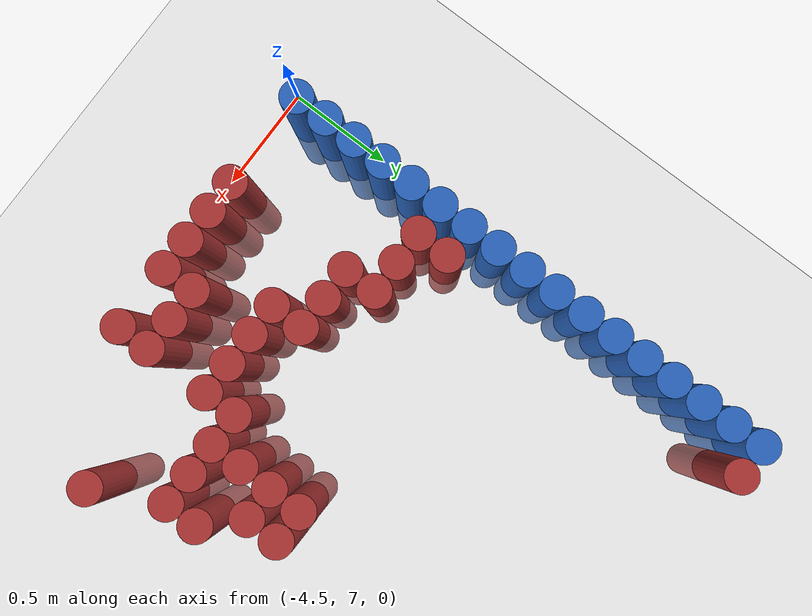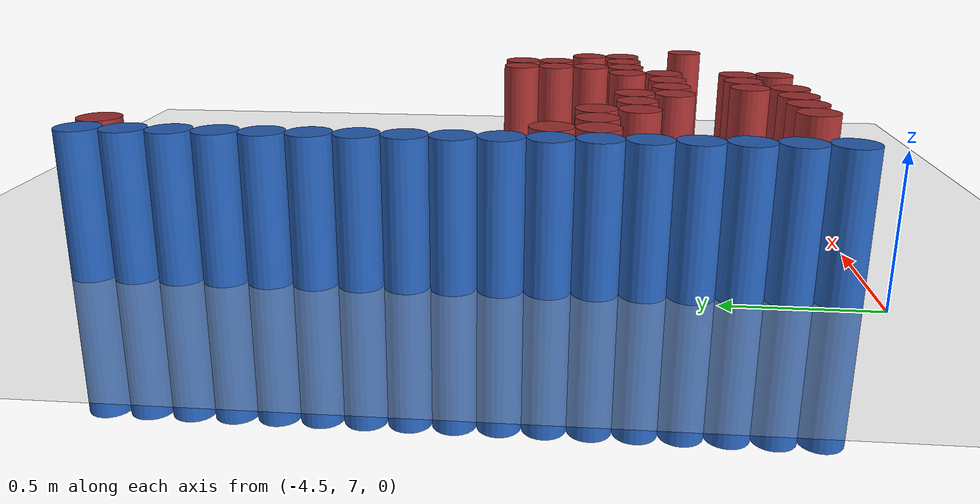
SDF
<sdf version="1.6">
 <world name="default">
  <model name="ground_plane">
   <static>1</static>
   <link name="link">
    <collision name="collision">
     <geometry><plane><normal>0 0 1</normal><size>100 100</size></plane></geometry>
     <surface><friction><ode><mu>100</mu><mu2>50</mu2></ode></friction></surface>
    </collision>
    <visual name="visual">
     <cast_shadows>0</cast_shadows>
     <geometry><plane><normal>0 0 1</normal><size>100 100</size></plane></geometry>
     <material>
      <script><uri>file://media/materials/scripts/gazebo.material</uri><name>Gazebo/Grey</name></script>
     </material>
    </visual>
   </link>
  </model>
  <model name="unit_cylinder_109">
   <static>1</static>
   <pose>-4.425000 7.125000 0.000000 0.000000 0.000000 0.000000</pose>
   <link name="link">
    <inertial>
     <mass>1</mass>
     <inertia><ixx>0.145833</ixx><ixy>0</ixy><ixz>0</ixz><iyy>0.145833</iyy><iyz>0</iyz><izz>0.125</izz></inertia>
    </inertial>
    <collision name="collision">
     <geometry><cylinder><radius>0.075000</radius><length>1</length></cylinder></geometry>
    </collision>
    <visual name="visual">
     <geometry><cylinder><radius>0.075000</radius><length>1</length></cylinder></geometry>
     <material>
      <ambient>0.152000 0.379000 0.720000 1</ambient>
      <diffuse>0.152000 0.379000 0.720000 1</diffuse>
     </material>
     <material>
      <script><name>Gazebo/Grey</name><uri>file://media/materials/scripts/gazebo.material</uri></script>
     </material>
    </visual>
   </link>
  </model>
  <model name="unit_cylinder_110">
   <static>1</static>
   <pose>-4.425000 7.275000 0.000000 0.000000 0.000000 0.000000</pose>
   <link name="link">
    <inertial>
     <mass>1</mass>
     <inertia><ixx>0.145833</ixx><ixy>0</ixy><ixz>0</ixz><iyy>0.145833</iyy><iyz>0</iyz><izz>0.125</izz></inertia>
    </inertial>
    <collision name="collision">
     <geometry><cylinder><radius>0.075000</radius><length>1</length></cylinder></geometry>
    </collision>
    <visual name="visual">
     <geometry><cylinder><radius>0.075000</radius><length>1</length></cylinder></geometry>
     <material>
      <ambient>0.152000 0.379000 0.720000 1</ambient>
      <diffuse>0.152000 0.379000 0.720000 1</diffuse>
     </material>
     <material>
      <script><name>Gazebo/Grey</name><uri>file://media/materials/scripts/gazebo.material</uri></script>
     </material>
    </visual>
   </link>
  </model>
  <model name="unit_cylinder_111">
   <static>1</static>
   <pose>-4.425000 7.425000 0.000000 0.000000 0.000000 0.000000</pose>
   <link name="link">
    <inertial>
     <mass>1</mass>
     <inertia><ixx>0.145833</ixx><ixy>0</ixy><ixz>0</ixz><iyy>0.145833</iyy><iyz>0</iyz><izz>0.125</izz></inertia>
    </inertial>
    <collision name="collision">
     <geometry><cylinder><radius>0.075000</radius><length>1</length></cylinder></geometry>
    </collision>
    <visual name="visual">
     <geometry><cylinder><radius>0.075000</radius><length>1</length></cylinder></geometry>
     <material>
      <ambient>0.152000 0.379000 0.720000 1</ambient>
      <diffuse>0.152000 0.379000 0.720000 1</diffuse>
     </material>
     <material>
      <script><name>Gazebo/Grey</name><uri>file://media/materials/scripts/gazebo.material</uri></script>
     </material>
    </visual>
   </link>
  </model>
  <model name="unit_cylinder_112">
   <static>1</static>
   <pose>-4.425000 7.575000 0.000000 0.000000 0.000000 0.000000</pose>
   <link name="link">
    <inertial>
     <mass>1</mass>
     <inertia><ixx>0.145833</ixx><ixy>0</ixy><ixz>0</ixz><iyy>0.145833</iyy><iyz>0</iyz><izz>0.125</izz></inertia>
    </inertial>
    <collision name="collision">
     <geometry><cylinder><radius>0.075000</radius><length>1</length></cylinder></geometry>
    </collision>
    <visual name="visual">
     <geometry><cylinder><radius>0.075000</radius><length>1</length></cylinder></geometry>
     <material>
      <ambient>0.152000 0.379000 0.720000 1</ambient>
      <diffuse>0.152000 0.379000 0.720000 1</diffuse>
     </material>
     <material>
      <script><name>Gazebo/Grey</name><uri>file://media/materials/scripts/gazebo.material</uri></script>
     </material>
    </visual>
   </link>
  </model>
  <model name="unit_cylinder_113">
   <static>1</static>
   <pose>-4.425000 7.725000 0.000000 0.000000 0.000000 0.000000</pose>
   <link name="link">
    <inertial>
     <mass>1</mass>
     <inertia><ixx>0.145833</ixx><ixy>0</ixy><ixz>0</ixz><iyy>0.145833</iyy><iyz>0</iyz><izz>0.125</izz></inertia>
    </inertial>
    <collision name="collision">
     <geometry><cylinder><radius>0.075000</radius><length>1</length></cylinder></geometry>
    </collision>
    <visual name="visual">
     <geometry><cylinder><radius>0.075000</radius><length>1</length></cylinder></geometry>
     <material>
      <ambient>0.152000 0.379000 0.720000 1</ambient>
      <diffuse>0.152000 0.379000 0.720000 1</diffuse>
     </material>
     <material>
      <script><name>Gazebo/Grey</name><uri>file://media/materials/scripts/gazebo.material</uri></script>
     </material>
    </visual>
   </link>
  </model>
  <model name="unit_cylinder_114">
   <static>1</static>
   <pose>-4.425000 7.875000 0.000000 0.000000 0.000000 0.000000</pose>
   <link name="link">
    <inertial>
     <mass>1</mass>
     <inertia><ixx>0.145833</ixx><ixy>0</ixy><ixz>0</ixz><iyy>0.145833</iyy><iyz>0</iyz><izz>0.125</izz></inertia>
    </inertial>
    <collision name="collision">
     <geometry><cylinder><radius>0.075000</radius><length>1</length></cylinder></geometry>
    </collision>
    <visual name="visual">
     <geometry><cylinder><radius>0.075000</radius><length>1</length></cylinder></geometry>
     <material>
      <ambient>0.152000 0.379000 0.720000 1</ambient>
      <diffuse>0.152000 0.379000 0.720000 1</diffuse>
     </material>
     <material>
      <script><name>Gazebo/Grey</name><uri>file://media/materials/scripts/gazebo.material</uri></script>
     </material>
    </visual>
   </link>
  </model>
  <model name="unit_cylinder_115">
   <static>1</static>
   <pose>-4.425000 8.025000 0.000000 0.000000 0.000000 0.000000</pose>
   <link name="link">
    <inertial>
     <mass>1</mass>
     <inertia><ixx>0.145833</ixx><ixy>0</ixy><ixz>0</ixz><iyy>0.145833</iyy><iyz>0</iyz><izz>0.125</izz></inertia>
    </inertial>
    <collision name="collision">
     <geometry><cylinder><radius>0.075000</radius><length>1</length></cylinder></geometry>
    </collision>
    <visual name="visual">
     <geometry><cylinder><radius>0.075000</radius><length>1</length></cylinder></geometry>
     <material>
      <ambient>0.152000 0.379000 0.720000 1</ambient>
      <diffuse>0.152000 0.379000 0.720000 1</diffuse>
     </material>
     <material>
      <script><name>Gazebo/Grey</name><uri>file://media/materials/scripts/gazebo.material</uri></script>
     </material>
    </visual>
   </link>
  </model>
  <model name="unit_cylinder_116">
   <static>1</static>
   <pose>-4.425000 8.175000 0.000000 0.000000 0.000000 0.000000</pose>
   <link name="link">
    <inertial>
     <mass>1</mass>
     <inertia><ixx>0.145833</ixx><ixy>0</ixy><ixz>0</ixz><iyy>0.145833</iyy><iyz>0</iyz><izz>0.125</izz></inertia>
    </inertial>
    <collision name="collision">
     <geometry><cylinder><radius>0.075000</radius><length>1</length></cylinder></geometry>
    </collision>
    <visual name="visual">
     <geometry><cylinder><radius>0.075000</radius><length>1</length></cylinder></geometry>
     <material>
      <ambient>0.152000 0.379000 0.720000 1</ambient>
      <diffuse>0.152000 0.379000 0.720000 1</diffuse>
     </material>
     <material>
      <script><name>Gazebo/Grey</name><uri>file://media/materials/scripts/gazebo.material</uri></script>
     </material>
    </visual>
   </link>
  </model>
  <model name="unit_cylinder_117">
   <static>1</static>
   <pose>-4.425000 8.325000 0.000000 0.000000 0.000000 0.000000</pose>
   <link name="link">
    <inertial>
     <mass>1</mass>
     <inertia><ixx>0.145833</ixx><ixy>0</ixy><ixz>0</ixz><iyy>0.145833</iyy><iyz>0</iyz><izz>0.125</izz></inertia>
    </inertial>
    <collision name="collision">
     <geometry><cylinder><radius>0.075000</radius><length>1</length></cylinder></geometry>
    </collision>
    <visual name="visual">
     <geometry><cylinder><radius>0.075000</radius><length>1</length></cylinder></geometry>
     <material>
      <ambient>0.152000 0.379000 0.720000 1</ambient>
      <diffuse>0.152000 0.379000 0.720000 1</diffuse>
     </material>
     <material>
      <script><name>Gazebo/Grey</name><uri>file://media/materials/scripts/gazebo.material</uri></script>
     </material>
    </visual>
   </link>
  </model>
  <model name="unit_cylinder_118">
   <static>1</static>
   <pose>-4.425000 8.475000 0.000000 0.000000 0.000000 0.000000</pose>
   <link name="link">
    <inertial>
     <mass>1</mass>
     <inertia><ixx>0.145833</ixx><ixy>0</ixy><ixz>0</ixz><iyy>0.145833</iyy><iyz>0</iyz><izz>0.125</izz></inertia>
    </inertial>
    <collision name="collision">
     <geometry><cylinder><radius>0.075000</radius><length>1</length></cylinder></geometry>
    </collision>
    <visual name="visual">
     <geometry><cylinder><radius>0.075000</radius><length>1</length></cylinder></geometry>
     <material>
      <ambient>0.152000 0.379000 0.720000 1</ambient>
      <diffuse>0.152000 0.379000 0.720000 1</diffuse>
     </material>
     <material>
      <script><name>Gazebo/Grey</name><uri>file://media/materials/scripts/gazebo.material</uri></script>
     </material>
    </visual>
   </link>
  </model>
  <model name="unit_cylinder_119">
   <static>1</static>
   <pose>-4.425000 8.625000 0.000000 0.000000 0.000000 0.000000</pose>
   <link name="link">
    <inertial>
     <mass>1</mass>
     <inertia><ixx>0.145833</ixx><ixy>0</ixy><ixz>0</ixz><iyy>0.145833</iyy><iyz>0</iyz><izz>0.125</izz></inertia>
    </inertial>
    <collision name="collision">
     <geometry><cylinder><radius>0.075000</radius><length>1</length></cylinder></geometry>
    </collision>
    <visual name="visual">
     <geometry><cylinder><radius>0.075000</radius><length>1</length></cylinder></geometry>
     <material>
      <ambient>0.152000 0.379000 0.720000 1</ambient>
      <diffuse>0.152000 0.379000 0.720000 1</diffuse>
     </material>
     <material>
      <script><name>Gazebo/Grey</name><uri>file://media/materials/scripts/gazebo.material</uri></script>
     </material>
    </visual>
   </link>
  </model>
  <model name="unit_cylinder_120">
   <static>1</static>
   <pose>-4.425000 8.775000 0.000000 0.000000 0.000000 0.000000</pose>
   <link name="link">
    <inertial>
     <mass>1</mass>
     <inertia><ixx>0.145833</ixx><ixy>0</ixy><ixz>0</ixz><iyy>0.145833</iyy><iyz>0</iyz><izz>0.125</izz></inertia>
    </inertial>
    <collision name="collision">
     <geometry><cylinder><radius>0.075000</radius><length>1</length></cylinder></geometry>
    </collision>
    <visual name="visual">
     <geometry><cylinder><radius>0.075000</radius><length>1</length></cylinder></geometry>
     <material>
      <ambient>0.152000 0.379000 0.720000 1</ambient>
      <diffuse>0.152000 0.379000 0.720000 1</diffuse>
     </material>
     <material>
      <script><name>Gazebo/Grey</name><uri>file://media/materials/scripts/gazebo.material</uri></script>
     </material>
    </visual>
   </link>
  </model>
  <model name="unit_cylinder_121">
   <static>1</static>
   <pose>-4.425000 8.925000 0.000000 0.000000 0.000000 0.000000</pose>
   <link name="link">
    <inertial>
     <mass>1</mass>
     <inertia><ixx>0.145833</ixx><ixy>0</ixy><ixz>0</ixz><iyy>0.145833</iyy><iyz>0</iyz><izz>0.125</izz></inertia>
    </inertial>
    <collision name="collision">
     <geometry><cylinder><radius>0.075000</radius><length>1</length></cylinder></geometry>
    </collision>
    <visual name="visual">
     <geometry><cylinder><radius>0.075000</radius><length>1</length></cylinder></geometry>
     <material>
      <ambient>0.152000 0.379000 0.720000 1</ambient>
      <diffuse>0.152000 0.379000 0.720000 1</diffuse>
     </material>
     <material>
      <script><name>Gazebo/Grey</name><uri>file://media/materials/scripts/gazebo.material</uri></script>
     </material>
    </visual>
   </link>
  </model>
  <model name="unit_cylinder_122">
   <static>1</static>
   <pose>-4.425000 9.075000 0.000000 0.000000 0.000000 0.000000</pose>
   <link name="link">
    <inertial>
     <mass>1</mass>
     <inertia><ixx>0.145833</ixx><ixy>0</ixy><ixz>0</ixz><iyy>0.145833</iyy><iyz>0</iyz><izz>0.125</izz></inertia>
    </inertial>
    <collision name="collision">
     <geometry><cylinder><radius>0.075000</radius><length>1</length></cylinder></geometry>
    </collision>
    <visual name="visual">
     <geometry><cylinder><radius>0.075000</radius><length>1</length></cylinder></geometry>
     <material>
      <ambient>0.152000 0.379000 0.720000 1</ambient>
      <diffuse>0.152000 0.379000 0.720000 1</diffuse>
     </material>
     <material>
      <script><name>Gazebo/Grey</name><uri>file://media/materials/scripts/gazebo.material</uri></script>
     </material>
    </visual>
   </link>
  </model>
  <model name="unit_cylinder_123">
   <static>1</static>
   <pose>-4.425000 9.225000 0.000000 0.000000 0.000000 0.000000</pose>
   <link name="link">
    <inertial>
     <mass>1</mass>
     <inertia><ixx>0.145833</ixx><ixy>0</ixy><ixz>0</ixz><iyy>0.145833</iyy><iyz>0</iyz><izz>0.125</izz></inertia>
    </inertial>
    <collision name="collision">
     <geometry><cylinder><radius>0.075000</radius><length>1</length></cylinder></geometry>
    </collision>
    <visual name="visual">
     <geometry><cylinder><radius>0.075000</radius><length>1</length></cylinder></geometry>
     <material>
      <ambient>0.152000 0.379000 0.720000 1</ambient>
      <diffuse>0.152000 0.379000 0.720000 1</diffuse>
     </material>
     <material>
      <script><name>Gazebo/Grey</name><uri>file://media/materials/scripts/gazebo.material</uri></script>
     </material>
    </visual>
   </link>
  </model>
  <model name="unit_cylinder_124">
   <static>1</static>
   <pose>-4.425000 9.375000 0.000000 0.000000 0.000000 0.000000</pose>
   <link name="link">
    <inertial>
     <mass>1</mass>
     <inertia><ixx>0.145833</ixx><ixy>0</ixy><ixz>0</ixz><iyy>0.145833</iyy><iyz>0</iyz><izz>0.125</izz></inertia>
    </inertial>
    <collision name="collision">
     <geometry><cylinder><radius>0.075000</radius><length>1</length></cylinder></geometry>
    </collision>
    <visual name="visual">
     <geometry><cylinder><radius>0.075000</radius><length>1</length></cylinder></geometry>
     <material>
      <ambient>0.152000 0.379000 0.720000 1</ambient>
      <diffuse>0.152000 0.379000 0.720000 1</diffuse>
     </material>
     <material>
      <script><name>Gazebo/Grey</name><uri>file://media/materials/scripts/gazebo.material</uri></script>
     </material>
    </visual>
   </link>
  </model>
  <model name="unit_cylinder_125">
   <static>1</static>
   <pose>-4.425000 9.525000 0.000000 0.000000 0.000000 0.000000</pose>
   <link name="link">
    <inertial>
     <mass>1</mass>
     <inertia><ixx>0.145833</ixx><ixy>0</ixy><ixz>0</ixz><iyy>0.145833</iyy><iyz>0</iyz><izz>0.125</izz></inertia>
    </inertial>
    <collision name="collision">
     <geometry><cylinder><radius>0.075000</radius><length>1</length></cylinder></geometry>
    </collision>
    <visual name="visual">
     <geometry><cylinder><radius>0.075000</radius><length>1</length></cylinder></geometry>
     <material>
      <ambient>0.152000 0.379000 0.720000 1</ambient>
      <diffuse>0.152000 0.379000 0.720000 1</diffuse>
     </material>
     <material>
      <script><name>Gazebo/Grey</name><uri>file://media/materials/scripts/gazebo.material</uri></script>
     </material>
    </visual>
   </link>
  </model>
  <model name="unit_cylinder_129">
   <static>1</static>
   <pose>-4.275000 7.875000 0.000000 0.000000 0.000000 0.000000</pose>
   <link name="link">
    <inertial>
     <mass>1</mass>
     <inertia><ixx>0.145833</ixx><ixy>0</ixy><ixz>0</ixz><iyy>0.145833</iyy><iyz>0</iyz><izz>0.125</izz></inertia>
    </inertial>
    <collision name="collision">
     <geometry><cylinder><radius>0.075000</radius><length>1</length></cylinder></geometry>
    </collision>
    <visual name="visual">
     <geometry><cylinder><radius>0.075000</radius><length>1</length></cylinder></geometry>
     <material>
      <ambient>0.648000 0.192000 0.192000 1</ambient>
      <diffuse>0.648000 0.192000 0.192000 1</diffuse>
     </material>
     <material>
      <script><name>Gazebo/Grey</name><uri>file://media/materials/scripts/gazebo.material</uri></script>
     </material>
    </visual>
   </link>
  </model>
  <model name="unit_cylinder_130">
   <static>1</static>
   <pose>-4.275000 8.025000 0.000000 0.000000 0.000000 0.000000</pose>
   <link name="link">
    <inertial>
     <mass>1</mass>
     <inertia><ixx>0.145833</ixx><ixy>0</ixy><ixz>0</ixz><iyy>0.145833</iyy><iyz>0</iyz><izz>0.125</izz></inertia>
    </inertial>
    <collision name="collision">
     <geometry><cylinder><radius>0.075000</radius><length>1</length></cylinder></geometry>
    </collision>
    <visual name="visual">
     <geometry><cylinder><radius>0.075000</radius><length>1</length></cylinder></geometry>
     <material>
      <ambient>0.648000 0.192000 0.192000 1</ambient>
      <diffuse>0.648000 0.192000 0.192000 1</diffuse>
     </material>
     <material>
      <script><name>Gazebo/Grey</name><uri>file://media/materials/scripts/gazebo.material</uri></script>
     </material>
    </visual>
   </link>
  </model>
  <model name="unit_cylinder_131">
   <static>1</static>
   <pose>-4.275000 9.525000 0.000000 0.000000 0.000000 0.000000</pose>
   <link name="link">
    <inertial>
     <mass>1</mass>
     <inertia><ixx>0.145833</ixx><ixy>0</ixy><ixz>0</ixz><iyy>0.145833</iyy><iyz>0</iyz><izz>0.125</izz></inertia>
    </inertial>
    <collision name="collision">
     <geometry><cylinder><radius>0.075000</radius><length>1</length></cylinder></geometry>
    </collision>
    <visual name="visual">
     <geometry><cylinder><radius>0.075000</radius><length>1</length></cylinder></geometry>
     <material>
      <ambient>0.648000 0.192000 0.192000 1</ambient>
      <diffuse>0.648000 0.192000 0.192000 1</diffuse>
     </material>
     <material>
      <script><name>Gazebo/Grey</name><uri>file://media/materials/scripts/gazebo.material</uri></script>
     </material>
    </visual>
   </link>
  </model>
  <model name="unit_cylinder_138">
   <static>1</static>
   <pose>-4.125000 7.875000 0.000000 0.000000 0.000000 0.000000</pose>
   <link name="link">
    <inertial>
     <mass>1</mass>
     <inertia><ixx>0.145833</ixx><ixy>0</ixy><ixz>0</ixz><iyy>0.145833</iyy><iyz>0</iyz><izz>0.125</izz></inertia>
    </inertial>
    <collision name="collision">
     <geometry><cylinder><radius>0.075000</radius><length>1</length></cylinder></geometry>
    </collision>
    <visual name="visual">
     <geometry><cylinder><radius>0.075000</radius><length>1</length></cylinder></geometry>
     <material>
      <ambient>0.648000 0.192000 0.192000 1</ambient>
      <diffuse>0.648000 0.192000 0.192000 1</diffuse>
     </material>
     <material>
      <script><name>Gazebo/Grey</name><uri>file://media/materials/scripts/gazebo.material</uri></script>
     </material>
    </visual>
   </link>
  </model>
  <model name="unit_cylinder_143">
   <static>1</static>
   <pose>-3.975000 7.125000 0.000000 0.000000 0.000000 0.000000</pose>
   <link name="link">
    <inertial>
     <mass>1</mass>
     <inertia><ixx>0.145833</ixx><ixy>0</ixy><ixz>0</ixz><iyy>0.145833</iyy><iyz>0</iyz><izz>0.125</izz></inertia>
    </inertial>
    <collision name="collision">
     <geometry><cylinder><radius>0.075000</radius><length>1</length></cylinder></geometry>
    </collision>
    <visual name="visual">
     <geometry><cylinder><radius>0.075000</radius><length>1</length></cylinder></geometry>
     <material>
      <ambient>0.648000 0.192000 0.192000 1</ambient>
      <diffuse>0.648000 0.192000 0.192000 1</diffuse>
     </material>
     <material>
      <script><name>Gazebo/Grey</name><uri>file://media/materials/scripts/gazebo.material</uri></script>
     </material>
    </visual>
   </link>
  </model>
  <model name="unit_cylinder_144">
   <static>1</static>
   <pose>-3.975000 7.725000 0.000000 0.000000 0.000000 0.000000</pose>
   <link name="link">
    <inertial>
     <mass>1</mass>
     <inertia><ixx>0.145833</ixx><ixy>0</ixy><ixz>0</ixz><iyy>0.145833</iyy><iyz>0</iyz><izz>0.125</izz></inertia>
    </inertial>
    <collision name="collision">
     <geometry><cylinder><radius>0.075000</radius><length>1</length></cylinder></geometry>
    </collision>
    <visual name="visual">
     <geometry><cylinder><radius>0.075000</radius><length>1</length></cylinder></geometry>
     <material>
      <ambient>0.648000 0.192000 0.192000 1</ambient>
      <diffuse>0.648000 0.192000 0.192000 1</diffuse>
     </material>
     <material>
      <script><name>Gazebo/Grey</name><uri>file://media/materials/scripts/gazebo.material</uri></script>
     </material>
    </visual>
   </link>
  </model>
  <model name="unit_cylinder_145">
   <static>1</static>
   <pose>-3.975000 7.875000 0.000000 0.000000 0.000000 0.000000</pose>
   <link name="link">
    <inertial>
     <mass>1</mass>
     <inertia><ixx>0.145833</ixx><ixy>0</ixy><ixz>0</ixz><iyy>0.145833</iyy><iyz>0</iyz><izz>0.125</izz></inertia>
    </inertial>
    <collision name="collision">
     <geometry><cylinder><radius>0.075000</radius><length>1</length></cylinder></geometry>
    </collision>
    <visual name="visual">
     <geometry><cylinder><radius>0.075000</radius><length>1</length></cylinder></geometry>
     <material>
      <ambient>0.648000 0.192000 0.192000 1</ambient>
      <diffuse>0.648000 0.192000 0.192000 1</diffuse>
     </material>
     <material>
      <script><name>Gazebo/Grey</name><uri>file://media/materials/scripts/gazebo.material</uri></script>
     </material>
    </visual>
   </link>
  </model>
  <model name="unit_cylinder_149">
   <static>1</static>
   <pose>-3.825000 7.125000 0.000000 0.000000 0.000000 0.000000</pose>
   <link name="link">
    <inertial>
     <mass>1</mass>
     <inertia><ixx>0.145833</ixx><ixy>0</ixy><ixz>0</ixz><iyy>0.145833</iyy><iyz>0</iyz><izz>0.125</izz></inertia>
    </inertial>
    <collision name="collision">
     <geometry><cylinder><radius>0.075000</radius><length>1</length></cylinder></geometry>
    </collision>
    <visual name="visual">
     <geometry><cylinder><radius>0.075000</radius><length>1</length></cylinder></geometry>
     <material>
      <ambient>0.648000 0.192000 0.192000 1</ambient>
      <diffuse>0.648000 0.192000 0.192000 1</diffuse>
     </material>
     <material>
      <script><name>Gazebo/Grey</name><uri>file://media/materials/scripts/gazebo.material</uri></script>
     </material>
    </visual>
   </link>
  </model>
  <model name="unit_cylinder_150">
   <static>1</static>
   <pose>-3.825000 7.725000 0.000000 0.000000 0.000000 0.000000</pose>
   <link name="link">
    <inertial>
     <mass>1</mass>
     <inertia><ixx>0.145833</ixx><ixy>0</ixy><ixz>0</ixz><iyy>0.145833</iyy><iyz>0</iyz><izz>0.125</izz></inertia>
    </inertial>
    <collision name="collision">
     <geometry><cylinder><radius>0.075000</radius><length>1</length></cylinder></geometry>
    </collision>
    <visual name="visual">
     <geometry><cylinder><radius>0.075000</radius><length>1</length></cylinder></geometry>
     <material>
      <ambient>0.648000 0.192000 0.192000 1</ambient>
      <diffuse>0.648000 0.192000 0.192000 1</diffuse>
     </material>
     <material>
      <script><name>Gazebo/Grey</name><uri>file://media/materials/scripts/gazebo.material</uri></script>
     </material>
    </visual>
   </link>
  </model>
  <model name="unit_cylinder_156">
   <static>1</static>
   <pose>-3.675000 7.125000 0.000000 0.000000 0.000000 0.000000</pose>
   <link name="link">
    <inertial>
     <mass>1</mass>
     <inertia><ixx>0.145833</ixx><ixy>0</ixy><ixz>0</ixz><iyy>0.145833</iyy><iyz>0</iyz><izz>0.125</izz></inertia>
    </inertial>
    <collision name="collision">
     <geometry><cylinder><radius>0.075000</radius><length>1</length></cylinder></geometry>
    </collision>
    <visual name="visual">
     <geometry><cylinder><radius>0.075000</radius><length>1</length></cylinder></geometry>
     <material>
      <ambient>0.648000 0.192000 0.192000 1</ambient>
      <diffuse>0.648000 0.192000 0.192000 1</diffuse>
     </material>
     <material>
      <script><name>Gazebo/Grey</name><uri>file://media/materials/scripts/gazebo.material</uri></script>
     </material>
    </visual>
   </link>
  </model>
  <model name="unit_cylinder_157">
   <static>1</static>
   <pose>-3.675000 7.575000 0.000000 0.000000 0.000000 0.000000</pose>
   <link name="link">
    <inertial>
     <mass>1</mass>
     <inertia><ixx>0.145833</ixx><ixy>0</ixy><ixz>0</ixz><iyy>0.145833</iyy><iyz>0</iyz><izz>0.125</izz></inertia>
    </inertial>
    <collision name="collision">
     <geometry><cylinder><radius>0.075000</radius><length>1</length></cylinder></geometry>
    </collision>
    <visual name="visual">
     <geometry><cylinder><radius>0.075000</radius><length>1</length></cylinder></geometry>
     <material>
      <ambient>0.648000 0.192000 0.192000 1</ambient>
      <diffuse>0.648000 0.192000 0.192000 1</diffuse>
     </material>
     <material>
      <script><name>Gazebo/Grey</name><uri>file://media/materials/scripts/gazebo.material</uri></script>
     </material>
    </visual>
   </link>
  </model>
  <model name="unit_cylinder_158">
   <static>1</static>
   <pose>-3.675000 7.725000 0.000000 0.000000 0.000000 0.000000</pose>
   <link name="link">
    <inertial>
     <mass>1</mass>
     <inertia><ixx>0.145833</ixx><ixy>0</ixy><ixz>0</ixz><iyy>0.145833</iyy><iyz>0</iyz><izz>0.125</izz></inertia>
    </inertial>
    <collision name="collision">
     <geometry><cylinder><radius>0.075000</radius><length>1</length></cylinder></geometry>
    </collision>
    <visual name="visual">
     <geometry><cylinder><radius>0.075000</radius><length>1</length></cylinder></geometry>
     <material>
      <ambient>0.648000 0.192000 0.192000 1</ambient>
      <diffuse>0.648000 0.192000 0.192000 1</diffuse>
     </material>
     <material>
      <script><name>Gazebo/Grey</name><uri>file://media/materials/scripts/gazebo.material</uri></script>
     </material>
    </visual>
   </link>
  </model>
  <model name="unit_cylinder_162">
   <static>1</static>
   <pose>-3.525000 7.125000 0.000000 0.000000 0.000000 0.000000</pose>
   <link name="link">
    <inertial>
     <mass>1</mass>
     <inertia><ixx>0.145833</ixx><ixy>0</ixy><ixz>0</ixz><iyy>0.145833</iyy><iyz>0</iyz><izz>0.125</izz></inertia>
    </inertial>
    <collision name="collision">
     <geometry><cylinder><radius>0.075000</radius><length>1</length></cylinder></geometry>
    </collision>
    <visual name="visual">
     <geometry><cylinder><radius>0.075000</radius><length>1</length></cylinder></geometry>
     <material>
      <ambient>0.648000 0.192000 0.192000 1</ambient>
      <diffuse>0.648000 0.192000 0.192000 1</diffuse>
     </material>
     <material>
      <script><name>Gazebo/Grey</name><uri>file://media/materials/scripts/gazebo.material</uri></script>
     </material>
    </visual>
   </link>
  </model>
  <model name="unit_cylinder_163">
   <static>1</static>
   <pose>-3.525000 7.275000 0.000000 0.000000 0.000000 0.000000</pose>
   <link name="link">
    <inertial>
     <mass>1</mass>
     <inertia><ixx>0.145833</ixx><ixy>0</ixy><ixz>0</ixz><iyy>0.145833</iyy><iyz>0</iyz><izz>0.125</izz></inertia>
    </inertial>
    <collision name="collision">
     <geometry><cylinder><radius>0.075000</radius><length>1</length></cylinder></geometry>
    </collision>
    <visual name="visual">
     <geometry><cylinder><radius>0.075000</radius><length>1</length></cylinder></geometry>
     <material>
      <ambient>0.648000 0.192000 0.192000 1</ambient>
      <diffuse>0.648000 0.192000 0.192000 1</diffuse>
     </material>
     <material>
      <script><name>Gazebo/Grey</name><uri>file://media/materials/scripts/gazebo.material</uri></script>
     </material>
    </visual>
   </link>
  </model>
  <model name="unit_cylinder_164">
   <static>1</static>
   <pose>-3.525000 7.575000 0.000000 0.000000 0.000000 0.000000</pose>
   <link name="link">
    <inertial>
     <mass>1</mass>
     <inertia><ixx>0.145833</ixx><ixy>0</ixy><ixz>0</ixz><iyy>0.145833</iyy><iyz>0</iyz><izz>0.125</izz></inertia>
    </inertial>
    <collision name="collision">
     <geometry><cylinder><radius>0.075000</radius><length>1</length></cylinder></geometry>
    </collision>
    <visual name="visual">
     <geometry><cylinder><radius>0.075000</radius><length>1</length></cylinder></geometry>
     <material>
      <ambient>0.648000 0.192000 0.192000 1</ambient>
      <diffuse>0.648000 0.192000 0.192000 1</diffuse>
     </material>
     <material>
      <script><name>Gazebo/Grey</name><uri>file://media/materials/scripts/gazebo.material</uri></script>
     </material>
    </visual>
   </link>
  </model>
  <model name="unit_cylinder_166">
   <static>1</static>
   <pose>-3.375000 7.275000 0.000000 0.000000 0.000000 0.000000</pose>
   <link name="link">
    <inertial>
     <mass>1</mass>
     <inertia><ixx>0.145833</ixx><ixy>0</ixy><ixz>0</ixz><iyy>0.145833</iyy><iyz>0</iyz><izz>0.125</izz></inertia>
    </inertial>
    <collision name="collision">
     <geometry><cylinder><radius>0.075000</radius><length>1</length></cylinder></geometry>
    </collision>
    <visual name="visual">
     <geometry><cylinder><radius>0.075000</radius><length>1</length></cylinder></geometry>
     <material>
      <ambient>0.648000 0.192000 0.192000 1</ambient>
      <diffuse>0.648000 0.192000 0.192000 1</diffuse>
     </material>
     <material>
      <script><name>Gazebo/Grey</name><uri>file://media/materials/scripts/gazebo.material</uri></script>
     </material>
    </visual>
   </link>
  </model>
  <model name="unit_cylinder_167">
   <static>1</static>
   <pose>-3.375000 7.575000 0.000000 0.000000 0.000000 0.000000</pose>
   <link name="link">
    <inertial>
     <mass>1</mass>
     <inertia><ixx>0.145833</ixx><ixy>0</ixy><ixz>0</ixz><iyy>0.145833</iyy><iyz>0</iyz><izz>0.125</izz></inertia>
    </inertial>
    <collision name="collision">
     <geometry><cylinder><radius>0.075000</radius><length>1</length></cylinder></geometry>
    </collision>
    <visual name="visual">
     <geometry><cylinder><radius>0.075000</radius><length>1</length></cylinder></geometry>
     <material>
      <ambient>0.648000 0.192000 0.192000 1</ambient>
      <diffuse>0.648000 0.192000 0.192000 1</diffuse>
     </material>
     <material>
      <script><name>Gazebo/Grey</name><uri>file://media/materials/scripts/gazebo.material</uri></script>
     </material>
    </visual>
   </link>
  </model>
  <model name="unit_cylinder_172">
   <static>1</static>
   <pose>-3.225000 7.125000 0.000000 0.000000 0.000000 0.000000</pose>
   <link name="link">
    <inertial>
     <mass>1</mass>
     <inertia><ixx>0.145833</ixx><ixy>0</ixy><ixz>0</ixz><iyy>0.145833</iyy><iyz>0</iyz><izz>0.125</izz></inertia>
    </inertial>
    <collision name="collision">
     <geometry><cylinder><radius>0.075000</radius><length>1</length></cylinder></geometry>
    </collision>
    <visual name="visual">
     <geometry><cylinder><radius>0.075000</radius><length>1</length></cylinder></geometry>
     <material>
      <ambient>0.648000 0.192000 0.192000 1</ambient>
      <diffuse>0.648000 0.192000 0.192000 1</diffuse>
     </material>
     <material>
      <script><name>Gazebo/Grey</name><uri>file://media/materials/scripts/gazebo.material</uri></script>
     </material>
    </visual>
   </link>
  </model>
  <model name="unit_cylinder_173">
   <static>1</static>
   <pose>-3.225000 7.275000 0.000000 0.000000 0.000000 0.000000</pose>
   <link name="link">
    <inertial>
     <mass>1</mass>
     <inertia><ixx>0.145833</ixx><ixy>0</ixy><ixz>0</ixz><iyy>0.145833</iyy><iyz>0</iyz><izz>0.125</izz></inertia>
    </inertial>
    <collision name="collision">
     <geometry><cylinder><radius>0.075000</radius><length>1</length></cylinder></geometry>
    </collision>
    <visual name="visual">
     <geometry><cylinder><radius>0.075000</radius><length>1</length></cylinder></geometry>
     <material>
      <ambient>0.648000 0.192000 0.192000 1</ambient>
      <diffuse>0.648000 0.192000 0.192000 1</diffuse>
     </material>
     <material>
      <script><name>Gazebo/Grey</name><uri>file://media/materials/scripts/gazebo.material</uri></script>
     </material>
    </visual>
   </link>
  </model>
  <model name="unit_cylinder_174">
   <static>1</static>
   <pose>-3.225000 7.575000 0.000000 0.000000 0.000000 0.000000</pose>
   <link name="link">
    <inertial>
     <mass>1</mass>
     <inertia><ixx>0.145833</ixx><ixy>0</ixy><ixz>0</ixz><iyy>0.145833</iyy><iyz>0</iyz><izz>0.125</izz></inertia>
    </inertial>
    <collision name="collision">
     <geometry><cylinder><radius>0.075000</radius><length>1</length></cylinder></geometry>
    </collision>
    <visual name="visual">
     <geometry><cylinder><radius>0.075000</radius><length>1</length></cylinder></geometry>
     <material>
      <ambient>0.648000 0.192000 0.192000 1</ambient>
      <diffuse>0.648000 0.192000 0.192000 1</diffuse>
     </material>
     <material>
      <script><name>Gazebo/Grey</name><uri>file://media/materials/scripts/gazebo.material</uri></script>
     </material>
    </visual>
   </link>
  </model>
  <model name="unit_cylinder_175">
   <static>1</static>
   <pose>-3.225000 7.725000 0.000000 0.000000 0.000000 0.000000</pose>
   <link name="link">
    <inertial>
     <mass>1</mass>
     <inertia><ixx>0.145833</ixx><ixy>0</ixy><ixz>0</ixz><iyy>0.145833</iyy><iyz>0</iyz><izz>0.125</izz></inertia>
    </inertial>
    <collision name="collision">
     <geometry><cylinder><radius>0.075000</radius><length>1</length></cylinder></geometry>
    </collision>
    <visual name="visual">
     <geometry><cylinder><radius>0.075000</radius><length>1</length></cylinder></geometry>
     <material>
      <ambient>0.648000 0.192000 0.192000 1</ambient>
      <diffuse>0.648000 0.192000 0.192000 1</diffuse>
     </material>
     <material>
      <script><name>Gazebo/Grey</name><uri>file://media/materials/scripts/gazebo.material</uri></script>
     </material>
    </visual>
   </link>
  </model>
  <model name="unit_cylinder_183">
   <static>1</static>
   <pose>-3.075000 7.725000 0.000000 0.000000 0.000000 0.000000</pose>
   <link name="link">
    <inertial>
     <mass>1</mass>
     <inertia><ixx>0.145833</ixx><ixy>0</ixy><ixz>0</ixz><iyy>0.145833</iyy><iyz>0</iyz><izz>0.125</izz></inertia>
    </inertial>
    <collision name="collision">
     <geometry><cylinder><radius>0.075000</radius><length>1</length></cylinder></geometry>
    </collision>
    <visual name="visual">
     <geometry><cylinder><radius>0.075000</radius><length>1</length></cylinder></geometry>
     <material>
      <ambient>0.648000 0.192000 0.192000 1</ambient>
      <diffuse>0.648000 0.192000 0.192000 1</diffuse>
     </material>
     <material>
      <script><name>Gazebo/Grey</name><uri>file://media/materials/scripts/gazebo.material</uri></script>
     </material>
    </visual>
   </link>
  </model>
  <model name="unit_cylinder_184">
   <static>1</static>
   <pose>-3.075000 7.875000 0.000000 0.000000 0.000000 0.000000</pose>
   <link name="link">
    <inertial>
     <mass>1</mass>
     <inertia><ixx>0.145833</ixx><ixy>0</ixy><ixz>0</ixz><iyy>0.145833</iyy><iyz>0</iyz><izz>0.125</izz></inertia>
    </inertial>
    <collision name="collision">
     <geometry><cylinder><radius>0.075000</radius><length>1</length></cylinder></geometry>
    </collision>
    <visual name="visual">
     <geometry><cylinder><radius>0.075000</radius><length>1</length></cylinder></geometry>
     <material>
      <ambient>0.648000 0.192000 0.192000 1</ambient>
      <diffuse>0.648000 0.192000 0.192000 1</diffuse>
     </material>
     <material>
      <script><name>Gazebo/Grey</name><uri>file://media/materials/scripts/gazebo.material</uri></script>
     </material>
    </visual>
   </link>
  </model>
  <model name="unit_cylinder_185">
   <static>1</static>
   <pose>-3.075000 8.025000 0.000000 0.000000 0.000000 0.000000</pose>
   <link name="link">
    <inertial>
     <mass>1</mass>
     <inertia><ixx>0.145833</ixx><ixy>0</ixy><ixz>0</ixz><iyy>0.145833</iyy><iyz>0</iyz><izz>0.125</izz></inertia>
    </inertial>
    <collision name="collision">
     <geometry><cylinder><radius>0.075000</radius><length>1</length></cylinder></geometry>
    </collision>
    <visual name="visual">
     <geometry><cylinder><radius>0.075000</radius><length>1</length></cylinder></geometry>
     <material>
      <ambient>0.648000 0.192000 0.192000 1</ambient>
      <diffuse>0.648000 0.192000 0.192000 1</diffuse>
     </material>
     <material>
      <script><name>Gazebo/Grey</name><uri>file://media/materials/scripts/gazebo.material</uri></script>
     </material>
    </visual>
   </link>
  </model>
  <model name="unit_cylinder_186">
   <static>1</static>
   <pose>-3.075000 8.175000 0.000000 0.000000 0.000000 0.000000</pose>
   <link name="link">
    <inertial>
     <mass>1</mass>
     <inertia><ixx>0.145833</ixx><ixy>0</ixy><ixz>0</ixz><iyy>0.145833</iyy><iyz>0</iyz><izz>0.125</izz></inertia>
    </inertial>
    <collision name="collision">
     <geometry><cylinder><radius>0.075000</radius><length>1</length></cylinder></geometry>
    </collision>
    <visual name="visual">
     <geometry><cylinder><radius>0.075000</radius><length>1</length></cylinder></geometry>
     <material>
      <ambient>0.648000 0.192000 0.192000 1</ambient>
      <diffuse>0.648000 0.192000 0.192000 1</diffuse>
     </material>
     <material>
      <script><name>Gazebo/Grey</name><uri>file://media/materials/scripts/gazebo.material</uri></script>
     </material>
    </visual>
   </link>
  </model>
  <model name="unit_cylinder_195">
   <static>1</static>
   <pose>-2.925000 7.725000 0.000000 0.000000 0.000000 0.000000</pose>
   <link name="link">
    <inertial>
     <mass>1</mass>
     <inertia><ixx>0.145833</ixx><ixy>0</ixy><ixz>0</ixz><iyy>0.145833</iyy><iyz>0</iyz><izz>0.125</izz></inertia>
    </inertial>
    <collision name="collision">
     <geometry><cylinder><radius>0.075000</radius><length>1</length></cylinder></geometry>
    </collision>
    <visual name="visual">
     <geometry><cylinder><radius>0.075000</radius><length>1</length></cylinder></geometry>
     <material>
      <ambient>0.648000 0.192000 0.192000 1</ambient>
      <diffuse>0.648000 0.192000 0.192000 1</diffuse>
     </material>
     <material>
      <script><name>Gazebo/Grey</name><uri>file://media/materials/scripts/gazebo.material</uri></script>
     </material>
    </visual>
   </link>
  </model>
  <model name="unit_cylinder_196">
   <static>1</static>
   <pose>-2.925000 8.025000 0.000000 0.000000 0.000000 0.000000</pose>
   <link name="link">
    <inertial>
     <mass>1</mass>
     <inertia><ixx>0.145833</ixx><ixy>0</ixy><ixz>0</ixz><iyy>0.145833</iyy><iyz>0</iyz><izz>0.125</izz></inertia>
    </inertial>
    <collision name="collision">
     <geometry><cylinder><radius>0.075000</radius><length>1</length></cylinder></geometry>
    </collision>
    <visual name="visual">
     <geometry><cylinder><radius>0.075000</radius><length>1</length></cylinder></geometry>
     <material>
      <ambient>0.648000 0.192000 0.192000 1</ambient>
      <diffuse>0.648000 0.192000 0.192000 1</diffuse>
     </material>
     <material>
      <script><name>Gazebo/Grey</name><uri>file://media/materials/scripts/gazebo.material</uri></script>
     </material>
    </visual>
   </link>
  </model>
  <model name="unit_cylinder_197">
   <static>1</static>
   <pose>-2.925000 8.175000 0.000000 0.000000 0.000000 0.000000</pose>
   <link name="link">
    <inertial>
     <mass>1</mass>
     <inertia><ixx>0.145833</ixx><ixy>0</ixy><ixz>0</ixz><iyy>0.145833</iyy><iyz>0</iyz><izz>0.125</izz></inertia>
    </inertial>
    <collision name="collision">
     <geometry><cylinder><radius>0.075000</radius><length>1</length></cylinder></geometry>
    </collision>
    <visual name="visual">
     <geometry><cylinder><radius>0.075000</radius><length>1</length></cylinder></geometry>
     <material>
      <ambient>0.648000 0.192000 0.192000 1</ambient>
      <diffuse>0.648000 0.192000 0.192000 1</diffuse>
     </material>
     <material>
      <script><name>Gazebo/Grey</name><uri>file://media/materials/scripts/gazebo.material</uri></script>
     </material>
    </visual>
   </link>
  </model>
  <model name="unit_cylinder_206">
   <static>1</static>
   <pose>-2.775000 7.725000 0.000000 0.000000 0.000000 0.000000</pose>
   <link name="link">
    <inertial>
     <mass>1</mass>
     <inertia><ixx>0.145833</ixx><ixy>0</ixy><ixz>0</ixz><iyy>0.145833</iyy><iyz>0</iyz><izz>0.125</izz></inertia>
    </inertial>
    <collision name="collision">
     <geometry><cylinder><radius>0.075000</radius><length>1</length></cylinder></geometry>
    </collision>
    <visual name="visual">
     <geometry><cylinder><radius>0.075000</radius><length>1</length></cylinder></geometry>
     <material>
      <ambient>0.648000 0.192000 0.192000 1</ambient>
      <diffuse>0.648000 0.192000 0.192000 1</diffuse>
     </material>
     <material>
      <script><name>Gazebo/Grey</name><uri>file://media/materials/scripts/gazebo.material</uri></script>
     </material>
    </visual>
   </link>
  </model>
  <model name="unit_cylinder_207">
   <static>1</static>
   <pose>-2.775000 7.875000 0.000000 0.000000 0.000000 0.000000</pose>
   <link name="link">
    <inertial>
     <mass>1</mass>
     <inertia><ixx>0.145833</ixx><ixy>0</ixy><ixz>0</ixz><iyy>0.145833</iyy><iyz>0</iyz><izz>0.125</izz></inertia>
    </inertial>
    <collision name="collision">
     <geometry><cylinder><radius>0.075000</radius><length>1</length></cylinder></geometry>
    </collision>
    <visual name="visual">
     <geometry><cylinder><radius>0.075000</radius><length>1</length></cylinder></geometry>
     <material>
      <ambient>0.648000 0.192000 0.192000 1</ambient>
      <diffuse>0.648000 0.192000 0.192000 1</diffuse>
     </material>
     <material>
      <script><name>Gazebo/Grey</name><uri>file://media/materials/scripts/gazebo.material</uri></script>
     </material>
    </visual>
   </link>
  </model>
  <model name="unit_cylinder_216">
   <static>1</static>
   <pose>-2.625000 7.425000 0.000000 0.000000 0.000000 0.000000</pose>
   <link name="link">
    <inertial>
     <mass>1</mass>
     <inertia><ixx>0.145833</ixx><ixy>0</ixy><ixz>0</ixz><iyy>0.145833</iyy><iyz>0</iyz><izz>0.125</izz></inertia>
    </inertial>
    <collision name="collision">
     <geometry><cylinder><radius>0.075000</radius><length>1</length></cylinder></geometry>
    </collision>
    <visual name="visual">
     <geometry><cylinder><radius>0.075000</radius><length>1</length></cylinder></geometry>
     <material>
      <ambient>0.648000 0.192000 0.192000 1</ambient>
      <diffuse>0.648000 0.192000 0.192000 1</diffuse>
     </material>
     <material>
      <script><name>Gazebo/Grey</name><uri>file://media/materials/scripts/gazebo.material</uri></script>
     </material>
    </visual>
   </link>
  </model>
 </world>
</sdf>
